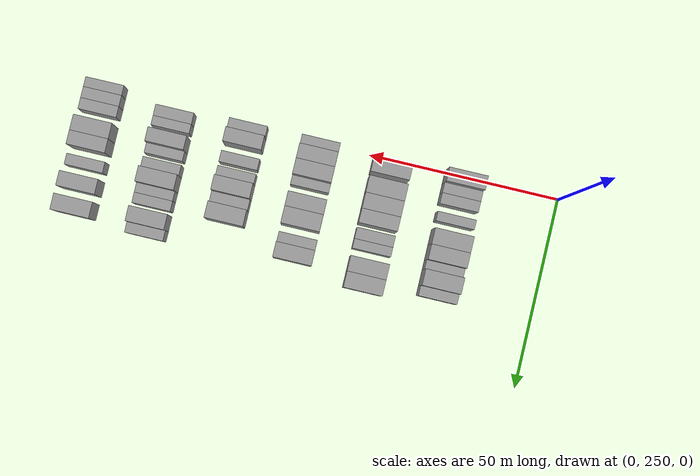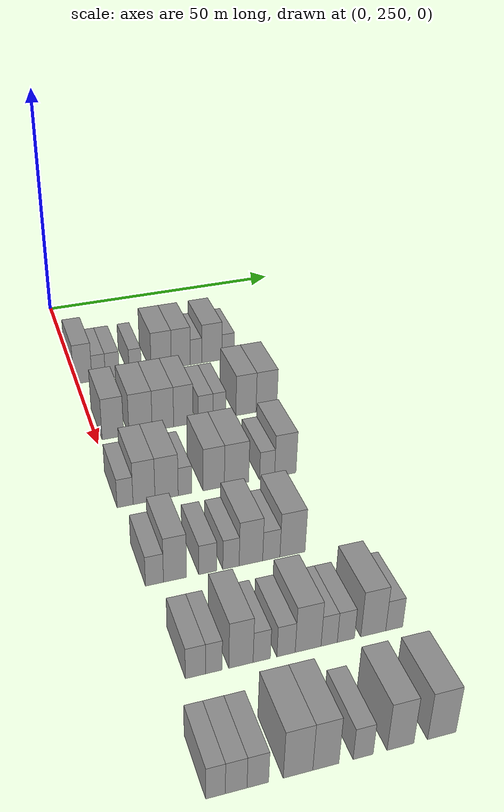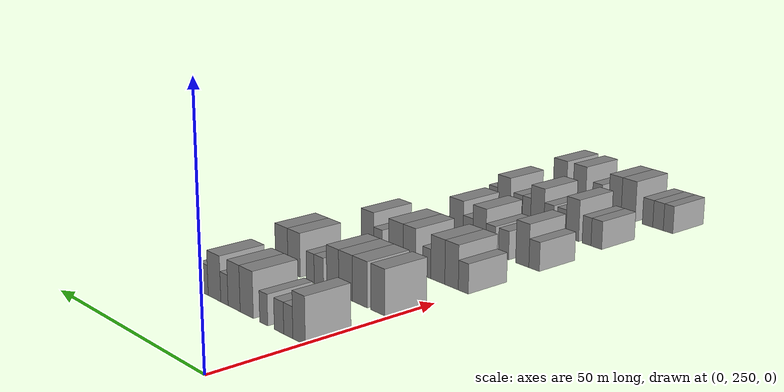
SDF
<sdf version="1.6">
 <world name="default">
  <model name="building_145">
   <static>1</static>
   <pose>25.0000 251.2728 0 0.000000 0.000000 0.000000</pose>
   <link name="link">
    <pose>0 0 4.50 0 0 0</pose>
    <collision name="collision"><geometry><box><size>10.0000 3.6251 9.0000</size></box></geometry></collision>
    <visual name="visual">
     <cast_shadows>0</cast_shadows>
     <geometry><box><size>10.0000 3.6251 9.0000</size></box></geometry>
     <material>
      <script>
       <uri>model://grey_wall/materials/scripts</uri>
       <uri>model://grey_wall/materials/textures</uri>
       <name>vrc/grey_wall</name>
      </script>
     </material>
    </visual>
   </link>
  </model>
  <model name="building_146">
   <static>1</static>
   <pose>25.0000 254.4373 0 0.000000 0.000000 0.000000</pose>
   <link name="link">
    <pose>0 0 3.00 0 0 0</pose>
    <collision name="collision"><geometry><box><size>10.0000 2.7040 6.0000</size></box></geometry></collision>
    <visual name="visual">
     <cast_shadows>0</cast_shadows>
     <geometry><box><size>10.0000 2.7040 6.0000</size></box></geometry>
     <material>
      <script>
       <uri>model://grey_wall/materials/scripts</uri>
       <uri>model://grey_wall/materials/textures</uri>
       <name>vrc/grey_wall</name>
      </script>
     </material>
    </visual>
   </link>
  </model>
  <model name="building_147">
   <static>1</static>
   <pose>25.0000 257.2128 0 0.000000 0.000000 0.000000</pose>
   <link name="link">
    <pose>0 0 3.00 0 0 0</pose>
    <collision name="collision"><geometry><box><size>10.0000 2.8471 6.0000</size></box></geometry></collision>
    <visual name="visual">
     <cast_shadows>0</cast_shadows>
     <geometry><box><size>10.0000 2.8471 6.0000</size></box></geometry>
     <material>
      <script>
       <uri>model://grey_wall/materials/scripts</uri>
       <uri>model://grey_wall/materials/textures</uri>
       <name>vrc/grey_wall</name>
      </script>
     </material>
    </visual>
   </link>
  </model>
  <model name="building_148">
   <static>1</static>
   <pose>25.0000 261.8823 0 0.000000 0.000000 0.000000</pose>
   <link name="link">
    <pose>0 0 3.00 0 0 0</pose>
    <collision name="collision"><geometry><box><size>10.0000 2.4919 6.0000</size></box></geometry></collision>
    <visual name="visual">
     <cast_shadows>0</cast_shadows>
     <geometry><box><size>10.0000 2.4919 6.0000</size></box></geometry>
     <material>
      <script>
       <uri>model://grey_wall/materials/scripts</uri>
       <uri>model://grey_wall/materials/textures</uri>
       <name>vrc/grey_wall</name>
      </script>
     </material>
    </visual>
   </link>
  </model>
  <model name="building_149">
   <static>1</static>
   <pose>25.0000 267.2276 0 0.000000 0.000000 0.000000</pose>
   <link name="link">
    <pose>0 0 4.50 0 0 0</pose>
    <collision name="collision"><geometry><box><size>10.0000 4.1987 9.0000</size></box></geometry></collision>
    <visual name="visual">
     <cast_shadows>0</cast_shadows>
     <geometry><box><size>10.0000 4.1987 9.0000</size></box></geometry>
     <material>
      <script>
       <uri>model://grey_wall/materials/scripts</uri>
       <uri>model://grey_wall/materials/textures</uri>
       <name>vrc/grey_wall</name>
      </script>
     </material>
    </visual>
   </link>
  </model>
  <model name="building_150">
   <static>1</static>
   <pose>25.0000 271.3038 0 0.000000 0.000000 0.000000</pose>
   <link name="link">
    <pose>0 0 4.50 0 0 0</pose>
    <collision name="collision"><geometry><box><size>10.0000 3.9537 9.0000</size></box></geometry></collision>
    <visual name="visual">
     <cast_shadows>0</cast_shadows>
     <geometry><box><size>10.0000 3.9537 9.0000</size></box></geometry>
     <material>
      <script>
       <uri>model://grey_wall/materials/scripts</uri>
       <uri>model://grey_wall/materials/textures</uri>
       <name>vrc/grey_wall</name>
      </script>
     </material>
    </visual>
   </link>
  </model>
  <model name="building_151">
   <static>1</static>
   <pose>25.0000 274.4862 0 0.000000 0.000000 0.000000</pose>
   <link name="link">
    <pose>0 0 3.00 0 0 0</pose>
    <collision name="collision"><geometry><box><size>10.0000 2.4110 6.0000</size></box></geometry></collision>
    <visual name="visual">
     <cast_shadows>0</cast_shadows>
     <geometry><box><size>10.0000 2.4110 6.0000</size></box></geometry>
     <material>
      <script>
       <uri>model://grey_wall/materials/scripts</uri>
       <uri>model://grey_wall/materials/textures</uri>
       <name>vrc/grey_wall</name>
      </script>
     </material>
    </visual>
   </link>
  </model>
  <model name="building_152">
   <static>1</static>
   <pose>25.0000 277.8231 0 0.000000 0.000000 0.000000</pose>
   <link name="link">
    <pose>0 0 4.50 0 0 0</pose>
    <collision name="collision"><geometry><box><size>10.0000 4.2627 9.0000</size></box></geometry></collision>
    <visual name="visual">
     <cast_shadows>0</cast_shadows>
     <geometry><box><size>10.0000 4.2627 9.0000</size></box></geometry>
     <material>
      <script>
       <uri>model://grey_wall/materials/scripts</uri>
       <uri>model://grey_wall/materials/textures</uri>
       <name>vrc/grey_wall</name>
      </script>
     </material>
    </visual>
   </link>
  </model>
  <model name="building_153">
   <static>1</static>
   <pose>25.0000 281.2835 0 0.000000 0.000000 0.000000</pose>
   <link name="link">
    <pose>0 0 3.00 0 0 0</pose>
    <collision name="collision"><geometry><box><size>10.0000 2.6581 6.0000</size></box></geometry></collision>
    <visual name="visual">
     <cast_shadows>0</cast_shadows>
     <geometry><box><size>10.0000 2.6581 6.0000</size></box></geometry>
     <material>
      <script>
       <uri>model://grey_wall/materials/scripts</uri>
       <uri>model://grey_wall/materials/textures</uri>
       <name>vrc/grey_wall</name>
      </script>
     </material>
    </visual>
   </link>
  </model>
  <model name="building_316">
   <static>1</static>
   <pose>44.0000 253.0367 0 0.000000 0.000000 0.000000</pose>
   <link name="link">
    <pose>0 0 4.50 0 0 0</pose>
    <collision name="collision"><geometry><box><size>10.0000 4.0550 9.0000</size></box></geometry></collision>
    <visual name="visual">
     <cast_shadows>0</cast_shadows>
     <geometry><box><size>10.0000 4.0550 9.0000</size></box></geometry>
     <material>
      <script>
       <uri>model://grey_wall/materials/scripts</uri>
       <uri>model://grey_wall/materials/textures</uri>
       <name>vrc/grey_wall</name>
      </script>
     </material>
    </visual>
   </link>
  </model>
  <model name="building_317">
   <static>1</static>
   <pose>44.0000 258.2714 0 0.000000 0.000000 0.000000</pose>
   <link name="link">
    <pose>0 0 4.50 0 0 0</pose>
    <collision name="collision"><geometry><box><size>10.0000 4.4143 9.0000</size></box></geometry></collision>
    <visual name="visual">
     <cast_shadows>0</cast_shadows>
     <geometry><box><size>10.0000 4.4143 9.0000</size></box></geometry>
     <material>
      <script>
       <uri>model://grey_wall/materials/scripts</uri>
       <uri>model://grey_wall/materials/textures</uri>
       <name>vrc/grey_wall</name>
      </script>
     </material>
    </visual>
   </link>
  </model>
  <model name="building_318">
   <static>1</static>
   <pose>44.0000 262.5353 0 0.000000 0.000000 0.000000</pose>
   <link name="link">
    <pose>0 0 4.50 0 0 0</pose>
    <collision name="collision"><geometry><box><size>10.0000 4.1136 9.0000</size></box></geometry></collision>
    <visual name="visual">
     <cast_shadows>0</cast_shadows>
     <geometry><box><size>10.0000 4.1136 9.0000</size></box></geometry>
     <material>
      <script>
       <uri>model://grey_wall/materials/scripts</uri>
       <uri>model://grey_wall/materials/textures</uri>
       <name>vrc/grey_wall</name>
      </script>
     </material>
    </visual>
   </link>
  </model>
  <model name="building_319">
   <static>1</static>
   <pose>44.0000 266.4527 0 0.000000 0.000000 0.000000</pose>
   <link name="link">
    <pose>0 0 4.50 0 0 0</pose>
    <collision name="collision"><geometry><box><size>10.0000 3.7212 9.0000</size></box></geometry></collision>
    <visual name="visual">
     <cast_shadows>0</cast_shadows>
     <geometry><box><size>10.0000 3.7212 9.0000</size></box></geometry>
     <material>
      <script>
       <uri>model://grey_wall/materials/scripts</uri>
       <uri>model://grey_wall/materials/textures</uri>
       <name>vrc/grey_wall</name>
      </script>
     </material>
    </visual>
   </link>
  </model>
  <model name="building_320">
   <static>1</static>
   <pose>44.0000 270.7901 0 0.000000 0.000000 0.000000</pose>
   <link name="link">
    <pose>0 0 3.00 0 0 0</pose>
    <collision name="collision"><geometry><box><size>10.0000 2.9537 6.0000</size></box></geometry></collision>
    <visual name="visual">
     <cast_shadows>0</cast_shadows>
     <geometry><box><size>10.0000 2.9537 6.0000</size></box></geometry>
     <material>
      <script>
       <uri>model://grey_wall/materials/scripts</uri>
       <uri>model://grey_wall/materials/textures</uri>
       <name>vrc/grey_wall</name>
      </script>
     </material>
    </visual>
   </link>
  </model>
  <model name="building_321">
   <static>1</static>
   <pose>44.0000 273.5145 0 0.000000 0.000000 0.000000</pose>
   <link name="link">
    <pose>0 0 3.00 0 0 0</pose>
    <collision name="collision"><geometry><box><size>10.0000 2.4951 6.0000</size></box></geometry></collision>
    <visual name="visual">
     <cast_shadows>0</cast_shadows>
     <geometry><box><size>10.0000 2.4951 6.0000</size></box></geometry>
     <material>
      <script>
       <uri>model://grey_wall/materials/scripts</uri>
       <uri>model://grey_wall/materials/textures</uri>
       <name>vrc/grey_wall</name>
      </script>
     </material>
    </visual>
   </link>
  </model>
  <model name="building_322">
   <static>1</static>
   <pose>44.0000 278.7722 0 0.000000 0.000000 0.000000</pose>
   <link name="link">
    <pose>0 0 4.50 0 0 0</pose>
    <collision name="collision"><geometry><box><size>10.0000 4.0202 9.0000</size></box></geometry></collision>
    <visual name="visual">
     <cast_shadows>0</cast_shadows>
     <geometry><box><size>10.0000 4.0202 9.0000</size></box></geometry>
     <material>
      <script>
       <uri>model://grey_wall/materials/scripts</uri>
       <uri>model://grey_wall/materials/textures</uri>
       <name>vrc/grey_wall</name>
      </script>
     </material>
    </visual>
   </link>
  </model>
  <model name="building_323">
   <static>1</static>
   <pose>44.0000 282.8722 0 0.000000 0.000000 0.000000</pose>
   <link name="link">
    <pose>0 0 4.50 0 0 0</pose>
    <collision name="collision"><geometry><box><size>10.0000 4.1797 9.0000</size></box></geometry></collision>
    <visual name="visual">
     <cast_shadows>0</cast_shadows>
     <geometry><box><size>10.0000 4.1797 9.0000</size></box></geometry>
     <material>
      <script>
       <uri>model://grey_wall/materials/scripts</uri>
       <uri>model://grey_wall/materials/textures</uri>
       <name>vrc/grey_wall</name>
      </script>
     </material>
    </visual>
   </link>
  </model>
  <model name="building_497">
   <static>1</static>
   <pose>63.0000 250.8713 0 0.000000 0.000000 0.000000</pose>
   <link name="link">
    <pose>0 0 3.00 0 0 0</pose>
    <collision name="collision"><geometry><box><size>10.0000 2.7737 6.0000</size></box></geometry></collision>
    <visual name="visual">
     <cast_shadows>0</cast_shadows>
     <geometry><box><size>10.0000 2.7737 6.0000</size></box></geometry>
     <material>
      <script>
       <uri>model://grey_wall/materials/scripts</uri>
       <uri>model://grey_wall/materials/textures</uri>
       <name>vrc/grey_wall</name>
      </script>
     </material>
    </visual>
   </link>
  </model>
  <model name="building_498">
   <static>1</static>
   <pose>63.0000 254.1786 0 0.000000 0.000000 0.000000</pose>
   <link name="link">
    <pose>0 0 4.50 0 0 0</pose>
    <collision name="collision"><geometry><box><size>10.0000 3.8409 9.0000</size></box></geometry></collision>
    <visual name="visual">
     <cast_shadows>0</cast_shadows>
     <geometry><box><size>10.0000 3.8409 9.0000</size></box></geometry>
     <material>
      <script>
       <uri>model://grey_wall/materials/scripts</uri>
       <uri>model://grey_wall/materials/textures</uri>
       <name>vrc/grey_wall</name>
      </script>
     </material>
    </visual>
   </link>
  </model>
  <model name="building_499">
   <static>1</static>
   <pose>63.0000 258.1415 0 0.000000 0.000000 0.000000</pose>
   <link name="link">
    <pose>0 0 4.50 0 0 0</pose>
    <collision name="collision"><geometry><box><size>10.0000 4.0849 9.0000</size></box></geometry></collision>
    <visual name="visual">
     <cast_shadows>0</cast_shadows>
     <geometry><box><size>10.0000 4.0849 9.0000</size></box></geometry>
     <material>
      <script>
       <uri>model://grey_wall/materials/scripts</uri>
       <uri>model://grey_wall/materials/textures</uri>
       <name>vrc/grey_wall</name>
      </script>
     </material>
    </visual>
   </link>
  </model>
  <model name="building_500">
   <static>1</static>
   <pose>63.0000 261.4115 0 0.000000 0.000000 0.000000</pose>
   <link name="link">
    <pose>0 0 3.00 0 0 0</pose>
    <collision name="collision"><geometry><box><size>10.0000 2.4551 6.0000</size></box></geometry></collision>
    <visual name="visual">
     <cast_shadows>0</cast_shadows>
     <geometry><box><size>10.0000 2.4551 6.0000</size></box></geometry>
     <material>
      <script>
       <uri>model://grey_wall/materials/scripts</uri>
       <uri>model://grey_wall/materials/textures</uri>
       <name>vrc/grey_wall</name>
      </script>
     </material>
    </visual>
   </link>
  </model>
  <model name="building_501">
   <static>1</static>
   <pose>63.0000 266.5518 0 0.000000 0.000000 0.000000</pose>
   <link name="link">
    <pose>0 0 4.50 0 0 0</pose>
    <collision name="collision"><geometry><box><size>10.0000 3.8255 9.0000</size></box></geometry></collision>
    <visual name="visual">
     <cast_shadows>0</cast_shadows>
     <geometry><box><size>10.0000 3.8255 9.0000</size></box></geometry>
     <material>
      <script>
       <uri>model://grey_wall/materials/scripts</uri>
       <uri>model://grey_wall/materials/textures</uri>
       <name>vrc/grey_wall</name>
      </script>
     </material>
    </visual>
   </link>
  </model>
  <model name="building_502">
   <static>1</static>
   <pose>63.0000 270.6862 0 0.000000 0.000000 0.000000</pose>
   <link name="link">
    <pose>0 0 4.50 0 0 0</pose>
    <collision name="collision"><geometry><box><size>10.0000 4.4432 9.0000</size></box></geometry></collision>
    <visual name="visual">
     <cast_shadows>0</cast_shadows>
     <geometry><box><size>10.0000 4.4432 9.0000</size></box></geometry>
     <material>
      <script>
       <uri>model://grey_wall/materials/scripts</uri>
       <uri>model://grey_wall/materials/textures</uri>
       <name>vrc/grey_wall</name>
      </script>
     </material>
    </visual>
   </link>
  </model>
  <model name="building_503">
   <static>1</static>
   <pose>63.0000 276.2923 0 0.000000 0.000000 0.000000</pose>
   <link name="link">
    <pose>0 0 3.00 0 0 0</pose>
    <collision name="collision"><geometry><box><size>10.0000 2.7690 6.0000</size></box></geometry></collision>
    <visual name="visual">
     <cast_shadows>0</cast_shadows>
     <geometry><box><size>10.0000 2.7690 6.0000</size></box></geometry>
     <material>
      <script>
       <uri>model://grey_wall/materials/scripts</uri>
       <uri>model://grey_wall/materials/textures</uri>
       <name>vrc/grey_wall</name>
      </script>
     </material>
    </visual>
   </link>
  </model>
  <model name="building_504">
   <static>1</static>
   <pose>63.0000 279.6749 0 0.000000 0.000000 0.000000</pose>
   <link name="link">
    <pose>0 0 4.50 0 0 0</pose>
    <collision name="collision"><geometry><box><size>10.0000 3.9963 9.0000</size></box></geometry></collision>
    <visual name="visual">
     <cast_shadows>0</cast_shadows>
     <geometry><box><size>10.0000 3.9963 9.0000</size></box></geometry>
     <material>
      <script>
       <uri>model://grey_wall/materials/scripts</uri>
       <uri>model://grey_wall/materials/textures</uri>
       <name>vrc/grey_wall</name>
      </script>
     </material>
    </visual>
   </link>
  </model>
  <model name="building_676">
   <static>1</static>
   <pose>82.0000 251.0931 0 0.000000 0.000000 0.000000</pose>
   <link name="link">
    <pose>0 0 3.00 0 0 0</pose>
    <collision name="collision"><geometry><box><size>10.0000 2.8849 6.0000</size></box></geometry></collision>
    <visual name="visual">
     <cast_shadows>0</cast_shadows>
     <geometry><box><size>10.0000 2.8849 6.0000</size></box></geometry>
     <material>
      <script>
       <uri>model://grey_wall/materials/scripts</uri>
       <uri>model://grey_wall/materials/textures</uri>
       <name>vrc/grey_wall</name>
      </script>
     </material>
    </visual>
   </link>
  </model>
  <model name="building_677">
   <static>1</static>
   <pose>82.0000 254.3932 0 0.000000 0.000000 0.000000</pose>
   <link name="link">
    <pose>0 0 4.50 0 0 0</pose>
    <collision name="collision"><geometry><box><size>10.0000 3.7154 9.0000</size></box></geometry></collision>
    <visual name="visual">
     <cast_shadows>0</cast_shadows>
     <geometry><box><size>10.0000 3.7154 9.0000</size></box></geometry>
     <material>
      <script>
       <uri>model://grey_wall/materials/scripts</uri>
       <uri>model://grey_wall/materials/textures</uri>
       <name>vrc/grey_wall</name>
      </script>
     </material>
    </visual>
   </link>
  </model>
  <model name="building_678">
   <static>1</static>
   <pose>82.0000 259.7238 0 0.000000 0.000000 0.000000</pose>
   <link name="link">
    <pose>0 0 3.00 0 0 0</pose>
    <collision name="collision"><geometry><box><size>10.0000 2.9459 6.0000</size></box></geometry></collision>
    <visual name="visual">
     <cast_shadows>0</cast_shadows>
     <geometry><box><size>10.0000 2.9459 6.0000</size></box></geometry>
     <material>
      <script>
       <uri>model://grey_wall/materials/scripts</uri>
       <uri>model://grey_wall/materials/textures</uri>
       <name>vrc/grey_wall</name>
      </script>
     </material>
    </visual>
   </link>
  </model>
  <model name="building_679">
   <static>1</static>
   <pose>82.0000 263.5472 0 0.000000 0.000000 0.000000</pose>
   <link name="link">
    <pose>0 0 3.00 0 0 0</pose>
    <collision name="collision"><geometry><box><size>10.0000 2.7008 6.0000</size></box></geometry></collision>
    <visual name="visual">
     <cast_shadows>0</cast_shadows>
     <geometry><box><size>10.0000 2.7008 6.0000</size></box></geometry>
     <material>
      <script>
       <uri>model://grey_wall/materials/scripts</uri>
       <uri>model://grey_wall/materials/textures</uri>
       <name>vrc/grey_wall</name>
      </script>
     </material>
    </visual>
   </link>
  </model>
  <model name="building_680">
   <static>1</static>
   <pose>82.0000 266.8663 0 0.000000 0.000000 0.000000</pose>
   <link name="link">
    <pose>0 0 4.50 0 0 0</pose>
    <collision name="collision"><geometry><box><size>10.0000 3.9372 9.0000</size></box></geometry></collision>
    <visual name="visual">
     <cast_shadows>0</cast_shadows>
     <geometry><box><size>10.0000 3.9372 9.0000</size></box></geometry>
     <material>
      <script>
       <uri>model://grey_wall/materials/scripts</uri>
       <uri>model://grey_wall/materials/textures</uri>
       <name>vrc/grey_wall</name>
      </script>
     </material>
    </visual>
   </link>
  </model>
  <model name="building_681">
   <static>1</static>
   <pose>82.0000 270.2925 0 0.000000 0.000000 0.000000</pose>
   <link name="link">
    <pose>0 0 3.00 0 0 0</pose>
    <collision name="collision"><geometry><box><size>10.0000 2.9153 6.0000</size></box></geometry></collision>
    <visual name="visual">
     <cast_shadows>0</cast_shadows>
     <geometry><box><size>10.0000 2.9153 6.0000</size></box></geometry>
     <material>
      <script>
       <uri>model://grey_wall/materials/scripts</uri>
       <uri>model://grey_wall/materials/textures</uri>
       <name>vrc/grey_wall</name>
      </script>
     </material>
    </visual>
   </link>
  </model>
  <model name="building_682">
   <static>1</static>
   <pose>82.0000 273.8923 0 0.000000 0.000000 0.000000</pose>
   <link name="link">
    <pose>0 0 4.50 0 0 0</pose>
    <collision name="collision"><geometry><box><size>10.0000 4.2843 9.0000</size></box></geometry></collision>
    <visual name="visual">
     <cast_shadows>0</cast_shadows>
     <geometry><box><size>10.0000 4.2843 9.0000</size></box></geometry>
     <material>
      <script>
       <uri>model://grey_wall/materials/scripts</uri>
       <uri>model://grey_wall/materials/textures</uri>
       <name>vrc/grey_wall</name>
      </script>
     </material>
    </visual>
   </link>
  </model>
  <model name="building_844">
   <static>1</static>
   <pose>101.0000 252.1398 0 0.000000 0.000000 0.000000</pose>
   <link name="link">
    <pose>0 0 3.00 0 0 0</pose>
    <collision name="collision"><geometry><box><size>10.0000 2.9613 6.0000</size></box></geometry></collision>
    <visual name="visual">
     <cast_shadows>0</cast_shadows>
     <geometry><box><size>10.0000 2.9613 6.0000</size></box></geometry>
     <material>
      <script>
       <uri>model://grey_wall/materials/scripts</uri>
       <uri>model://grey_wall/materials/textures</uri>
       <name>vrc/grey_wall</name>
      </script>
     </material>
    </visual>
   </link>
  </model>
  <model name="building_845">
   <static>1</static>
   <pose>101.0000 254.8559 0 0.000000 0.000000 0.000000</pose>
   <link name="link">
    <pose>0 0 3.00 0 0 0</pose>
    <collision name="collision"><geometry><box><size>10.0000 2.4710 6.0000</size></box></geometry></collision>
    <visual name="visual">
     <cast_shadows>0</cast_shadows>
     <geometry><box><size>10.0000 2.4710 6.0000</size></box></geometry>
     <material>
      <script>
       <uri>model://grey_wall/materials/scripts</uri>
       <uri>model://grey_wall/materials/textures</uri>
       <name>vrc/grey_wall</name>
      </script>
     </material>
    </visual>
   </link>
  </model>
  <model name="building_846">
   <static>1</static>
   <pose>101.0000 258.9156 0 0.000000 0.000000 0.000000</pose>
   <link name="link">
    <pose>0 0 4.50 0 0 0</pose>
    <collision name="collision"><geometry><box><size>10.0000 3.6485 9.0000</size></box></geometry></collision>
    <visual name="visual">
     <cast_shadows>0</cast_shadows>
     <geometry><box><size>10.0000 3.6485 9.0000</size></box></geometry>
     <material>
      <script>
       <uri>model://grey_wall/materials/scripts</uri>
       <uri>model://grey_wall/materials/textures</uri>
       <name>vrc/grey_wall</name>
      </script>
     </material>
    </visual>
   </link>
  </model>
  <model name="building_847">
   <static>1</static>
   <pose>101.0000 262.0502 0 0.000000 0.000000 0.000000</pose>
   <link name="link">
    <pose>0 0 3.00 0 0 0</pose>
    <collision name="collision"><geometry><box><size>10.0000 2.6206 6.0000</size></box></geometry></collision>
    <visual name="visual">
     <cast_shadows>0</cast_shadows>
     <geometry><box><size>10.0000 2.6206 6.0000</size></box></geometry>
     <material>
      <script>
       <uri>model://grey_wall/materials/scripts</uri>
       <uri>model://grey_wall/materials/textures</uri>
       <name>vrc/grey_wall</name>
      </script>
     </material>
    </visual>
   </link>
  </model>
  <model name="building_848">
   <static>1</static>
   <pose>101.0000 265.7636 0 0.000000 0.000000 0.000000</pose>
   <link name="link">
    <pose>0 0 3.00 0 0 0</pose>
    <collision name="collision"><geometry><box><size>10.0000 2.8061 6.0000</size></box></geometry></collision>
    <visual name="visual">
     <cast_shadows>0</cast_shadows>
     <geometry><box><size>10.0000 2.8061 6.0000</size></box></geometry>
     <material>
      <script>
       <uri>model://grey_wall/materials/scripts</uri>
       <uri>model://grey_wall/materials/textures</uri>
       <name>vrc/grey_wall</name>
      </script>
     </material>
    </visual>
   </link>
  </model>
  <model name="building_849">
   <static>1</static>
   <pose>101.0000 269.1738 0 0.000000 0.000000 0.000000</pose>
   <link name="link">
    <pose>0 0 4.50 0 0 0</pose>
    <collision name="collision"><geometry><box><size>10.0000 4.0144 9.0000</size></box></geometry></collision>
    <visual name="visual">
     <cast_shadows>0</cast_shadows>
     <geometry><box><size>10.0000 4.0144 9.0000</size></box></geometry>
     <material>
      <script>
       <uri>model://grey_wall/materials/scripts</uri>
       <uri>model://grey_wall/materials/textures</uri>
       <name>vrc/grey_wall</name>
      </script>
     </material>
    </visual>
   </link>
  </model>
  <model name="building_850">
   <static>1</static>
   <pose>101.0000 272.4551 0 0.000000 0.000000 0.000000</pose>
   <link name="link">
    <pose>0 0 3.00 0 0 0</pose>
    <collision name="collision"><geometry><box><size>10.0000 2.5481 6.0000</size></box></geometry></collision>
    <visual name="visual">
     <cast_shadows>0</cast_shadows>
     <geometry><box><size>10.0000 2.5481 6.0000</size></box></geometry>
     <material>
      <script>
       <uri>model://grey_wall/materials/scripts</uri>
       <uri>model://grey_wall/materials/textures</uri>
       <name>vrc/grey_wall</name>
      </script>
     </material>
    </visual>
   </link>
  </model>
  <model name="building_851">
   <static>1</static>
   <pose>101.0000 275.0875 0 0.000000 0.000000 0.000000</pose>
   <link name="link">
    <pose>0 0 3.00 0 0 0</pose>
    <collision name="collision"><geometry><box><size>10.0000 2.7167 6.0000</size></box></geometry></collision>
    <visual name="visual">
     <cast_shadows>0</cast_shadows>
     <geometry><box><size>10.0000 2.7167 6.0000</size></box></geometry>
     <material>
      <script>
       <uri>model://grey_wall/materials/scripts</uri>
       <uri>model://grey_wall/materials/textures</uri>
       <name>vrc/grey_wall</name>
      </script>
     </material>
    </visual>
   </link>
  </model>
  <model name="building_852">
   <static>1</static>
   <pose>101.0000 279.4395 0 0.000000 0.000000 0.000000</pose>
   <link name="link">
    <pose>0 0 4.50 0 0 0</pose>
    <collision name="collision"><geometry><box><size>10.0000 3.9874 9.0000</size></box></geometry></collision>
    <visual name="visual">
     <cast_shadows>0</cast_shadows>
     <geometry><box><size>10.0000 3.9874 9.0000</size></box></geometry>
     <material>
      <script>
       <uri>model://grey_wall/materials/scripts</uri>
       <uri>model://grey_wall/materials/textures</uri>
       <name>vrc/grey_wall</name>
      </script>
     </material>
    </visual>
   </link>
  </model>
  <model name="building_853">
   <static>1</static>
   <pose>101.0000 282.8006 0 0.000000 0.000000 0.000000</pose>
   <link name="link">
    <pose>0 0 3.00 0 0 0</pose>
    <collision name="collision"><geometry><box><size>10.0000 2.7348 6.0000</size></box></geometry></collision>
    <visual name="visual">
     <cast_shadows>0</cast_shadows>
     <geometry><box><size>10.0000 2.7348 6.0000</size></box></geometry>
     <material>
      <script>
       <uri>model://grey_wall/materials/scripts</uri>
       <uri>model://grey_wall/materials/textures</uri>
       <name>vrc/grey_wall</name>
      </script>
     </material>
    </visual>
   </link>
  </model>
  <model name="building_1027">
   <static>1</static>
   <pose>120.0000 249.2362 0 0.000000 0.000000 0.000000</pose>
   <link name="link">
    <pose>0 0 3.00 0 0 0</pose>
    <collision name="collision"><geometry><box><size>10.0000 2.5910 6.0000</size></box></geometry></collision>
    <visual name="visual">
     <cast_shadows>0</cast_shadows>
     <geometry><box><size>10.0000 2.5910 6.0000</size></box></geometry>
     <material>
      <script>
       <uri>model://grey_wall/materials/scripts</uri>
       <uri>model://grey_wall/materials/textures</uri>
       <name>vrc/grey_wall</name>
      </script>
     </material>
    </visual>
   </link>
  </model>
  <model name="building_1028">
   <static>1</static>
   <pose>120.0000 251.9854 0 0.000000 0.000000 0.000000</pose>
   <link name="link">
    <pose>0 0 3.00 0 0 0</pose>
    <collision name="collision"><geometry><box><size>10.0000 2.9075 6.0000</size></box></geometry></collision>
    <visual name="visual">
     <cast_shadows>0</cast_shadows>
     <geometry><box><size>10.0000 2.9075 6.0000</size></box></geometry>
     <material>
      <script>
       <uri>model://grey_wall/materials/scripts</uri>
       <uri>model://grey_wall/materials/textures</uri>
       <name>vrc/grey_wall</name>
      </script>
     </material>
    </visual>
   </link>
  </model>
  <model name="building_1029">
   <static>1</static>
   <pose>120.0000 254.8956 0 0.000000 0.000000 0.000000</pose>
   <link name="link">
    <pose>0 0 3.00 0 0 0</pose>
    <collision name="collision"><geometry><box><size>10.0000 2.9127 6.0000</size></box></geometry></collision>
    <visual name="visual">
     <cast_shadows>0</cast_shadows>
     <geometry><box><size>10.0000 2.9127 6.0000</size></box></geometry>
     <material>
      <script>
       <uri>model://grey_wall/materials/scripts</uri>
       <uri>model://grey_wall/materials/textures</uri>
       <name>vrc/grey_wall</name>
      </script>
     </material>
    </visual>
   </link>
  </model>
  <model name="building_1030">
   <static>1</static>
   <pose>120.0000 260.3854 0 0.000000 0.000000 0.000000</pose>
   <link name="link">
    <pose>0 0 4.50 0 0 0</pose>
    <collision name="collision"><geometry><box><size>10.0000 4.0669 9.0000</size></box></geometry></collision>
    <visual name="visual">
     <cast_shadows>0</cast_shadows>
     <geometry><box><size>10.0000 4.0669 9.0000</size></box></geometry>
     <material>
      <script>
       <uri>model://grey_wall/materials/scripts</uri>
       <uri>model://grey_wall/materials/textures</uri>
       <name>vrc/grey_wall</name>
      </script>
     </material>
    </visual>
   </link>
  </model>
  <model name="building_1031">
   <static>1</static>
   <pose>120.0000 264.2395 0 0.000000 0.000000 0.000000</pose>
   <link name="link">
    <pose>0 0 4.50 0 0 0</pose>
    <collision name="collision"><geometry><box><size>10.0000 3.6413 9.0000</size></box></geometry></collision>
    <visual name="visual">
     <cast_shadows>0</cast_shadows>
     <geometry><box><size>10.0000 3.6413 9.0000</size></box></geometry>
     <material>
      <script>
       <uri>model://grey_wall/materials/scripts</uri>
       <uri>model://grey_wall/materials/textures</uri>
       <name>vrc/grey_wall</name>
      </script>
     </material>
    </visual>
   </link>
  </model>
  <model name="building_1032">
   <static>1</static>
   <pose>120.0000 269.4859 0 0.000000 0.000000 0.000000</pose>
   <link name="link">
    <pose>0 0 3.00 0 0 0</pose>
    <collision name="collision"><geometry><box><size>10.0000 2.8515 6.0000</size></box></geometry></collision>
    <visual name="visual">
     <cast_shadows>0</cast_shadows>
     <geometry><box><size>10.0000 2.8515 6.0000</size></box></geometry>
     <material>
      <script>
       <uri>model://grey_wall/materials/scripts</uri>
       <uri>model://grey_wall/materials/textures</uri>
       <name>vrc/grey_wall</name>
      </script>
     </material>
    </visual>
   </link>
  </model>
  <model name="building_1033">
   <static>1</static>
   <pose>120.0000 274.8435 0 0.000000 0.000000 0.000000</pose>
   <link name="link">
    <pose>0 0 4.50 0 0 0</pose>
    <collision name="collision"><geometry><box><size>10.0000 3.8636 9.0000</size></box></geometry></collision>
    <visual name="visual">
     <cast_shadows>0</cast_shadows>
     <geometry><box><size>10.0000 3.8636 9.0000</size></box></geometry>
     <material>
      <script>
       <uri>model://grey_wall/materials/scripts</uri>
       <uri>model://grey_wall/materials/textures</uri>
       <name>vrc/grey_wall</name>
      </script>
     </material>
    </visual>
   </link>
  </model>
  <model name="building_1034">
   <static>1</static>
   <pose>120.0000 280.8712 0 0.000000 0.000000 0.000000</pose>
   <link name="link">
    <pose>0 0 4.50 0 0 0</pose>
    <collision name="collision"><geometry><box><size>10.0000 4.1919 9.0000</size></box></geometry></collision>
    <visual name="visual">
     <cast_shadows>0</cast_shadows>
     <geometry><box><size>10.0000 4.1919 9.0000</size></box></geometry>
     <material>
      <script>
       <uri>model://grey_wall/materials/scripts</uri>
       <uri>model://grey_wall/materials/textures</uri>
       <name>vrc/grey_wall</name>
      </script>
     </material>
    </visual>
   </link>
  </model>
 </world>
</sdf>
